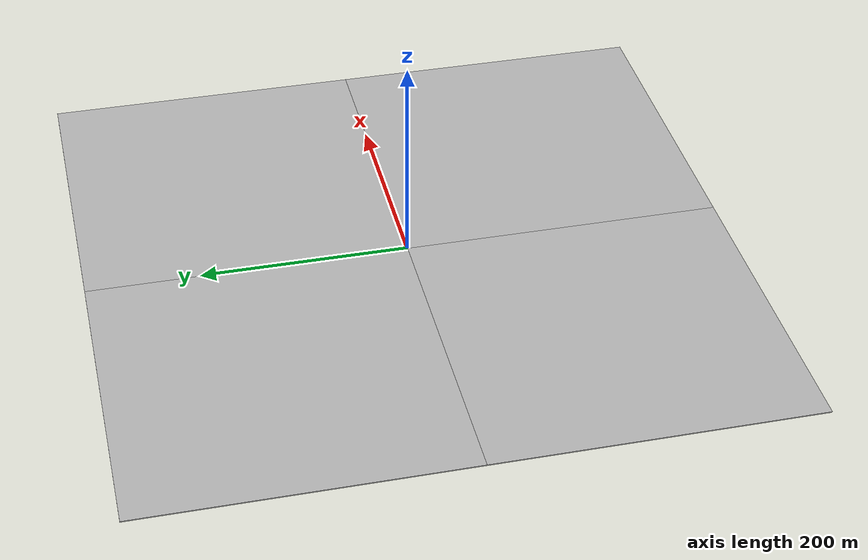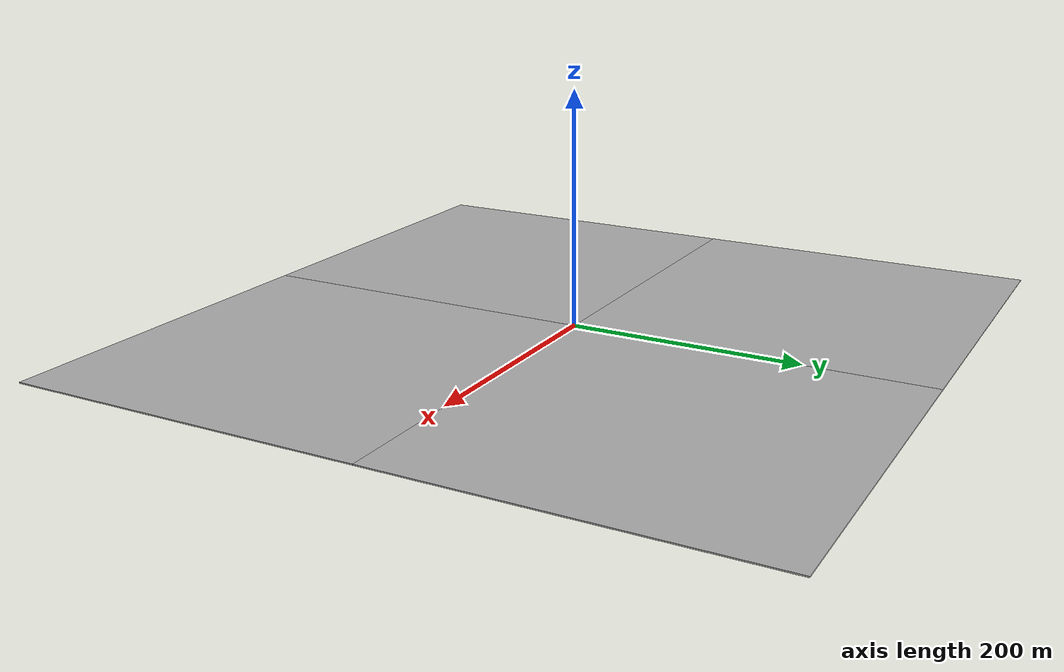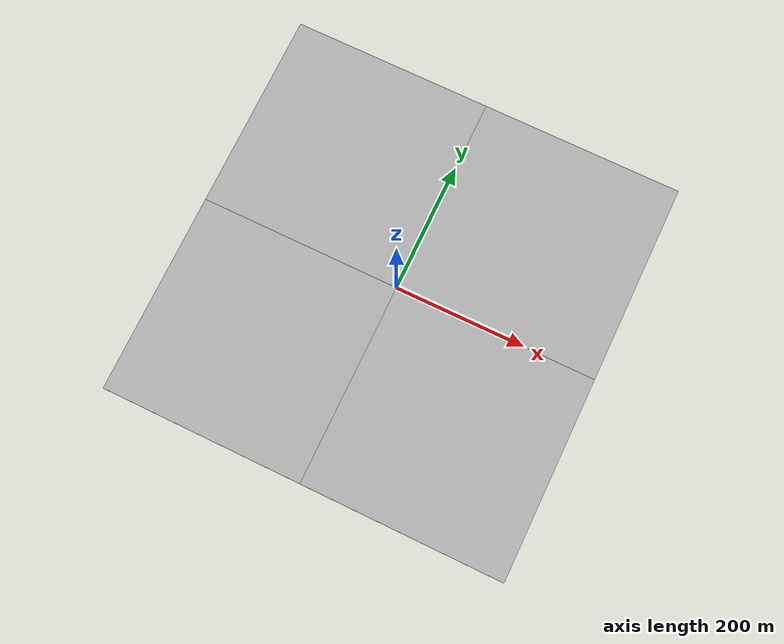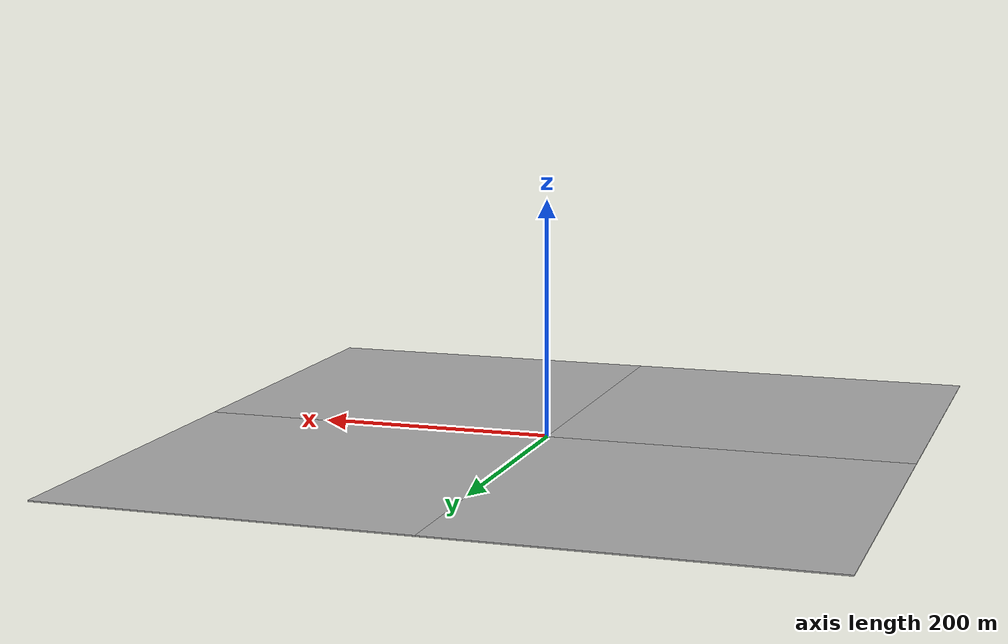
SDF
<sdf version='1.6'>
<model name='map_satellite_36.0835594_140.07664_400_400'>
  <static>true</static>
  <link name='link'>
    <collision name='collision'>
      <pose>0 0 -0.5 0 0 0</pose>
      <geometry>
        <box>
          <size>617.733 617.733 1</size>
        </box>
      </geometry>
    </collision>
    <visual name='visual0_0'>
      <pose>-154.433 154.433 -0.5 0 0 1.5708</pose>
      <geometry>
        <box>
          <size>308.866 308.866 1</size>
        </box>
      </geometry>
      <material>
        <script>
          <uri>model://map_satellite_36.0835594_140.07664_400_400/materials/scripts</uri>
          <uri>model://map_satellite_36.0835594_140.07664_400_400/materials/textures</uri>
          <name>map_satellite_36.0835594_140.07664_400_400/0_0</name>
        </script>
      </material>
    </visual>
    <visual name='visual0_1'>
      <pose>154.433 154.433 -0.5 0 0 1.5708</pose>
      <geometry>
        <box>
          <size>308.866 308.866 1</size>
        </box>
      </geometry>
      <material>
        <script>
          <uri>model://map_satellite_36.0835594_140.07664_400_400/materials/scripts</uri>
          <uri>model://map_satellite_36.0835594_140.07664_400_400/materials/textures</uri>
          <name>map_satellite_36.0835594_140.07664_400_400/0_1</name>
        </script>
      </material>
    </visual>
    <visual name='visual1_0'>
      <pose>-154.433 -154.433 -0.5 0 0 1.5708</pose>
      <geometry>
        <box>
          <size>308.866 308.866 1</size>
        </box>
      </geometry>
      <material>
        <script>
          <uri>model://map_satellite_36.0835594_140.07664_400_400/materials/scripts</uri>
          <uri>model://map_satellite_36.0835594_140.07664_400_400/materials/textures</uri>
          <name>map_satellite_36.0835594_140.07664_400_400/1_0</name>
        </script>
      </material>
    </visual>
    <visual name='visual1_1'>
      <pose>154.433 -154.433 -0.5 0 0 1.5708</pose>
      <geometry>
        <box>
          <size>308.866 308.866 1</size>
        </box>
      </geometry>
      <material>
        <script>
          <uri>model://map_satellite_36.0835594_140.07664_400_400/materials/scripts</uri>
          <uri>model://map_satellite_36.0835594_140.07664_400_400/materials/textures</uri>
          <name>map_satellite_36.0835594_140.07664_400_400/1_1</name>
        </script>
      </material>
    </visual>
  </link>
</model>
</sdf>
